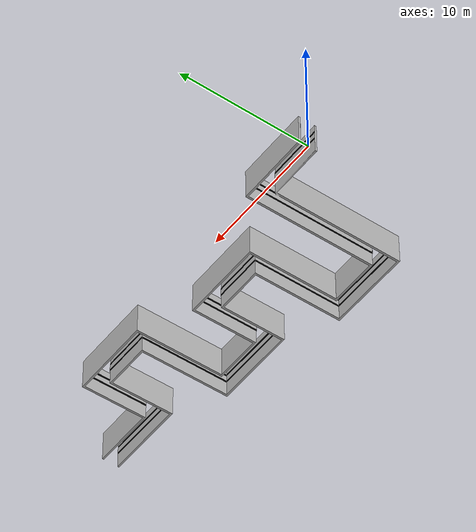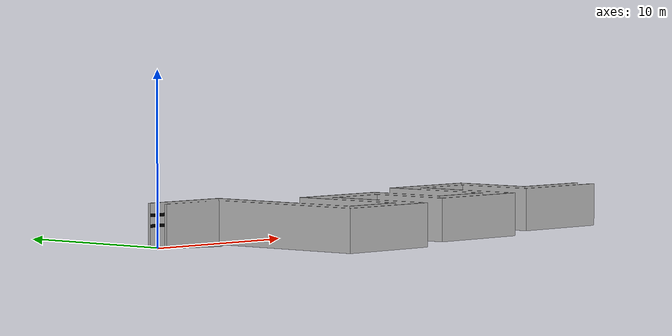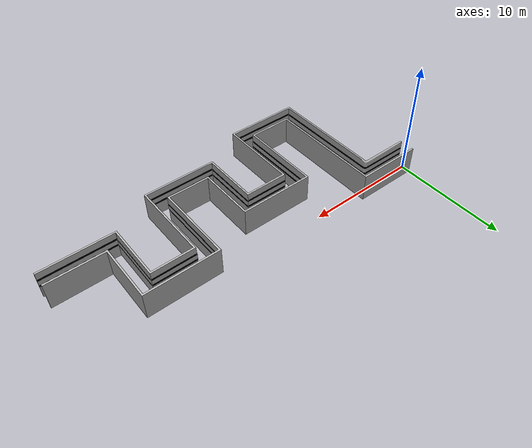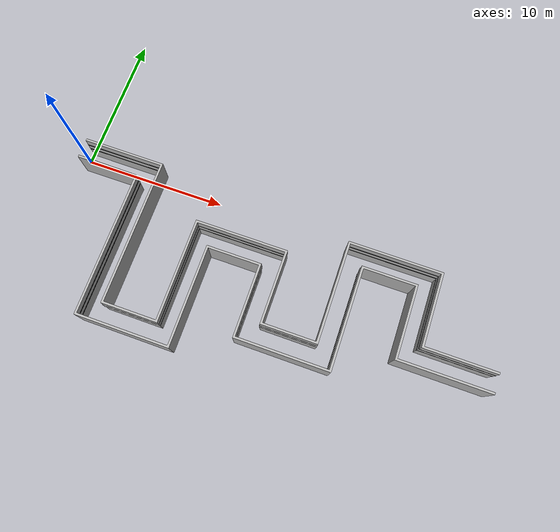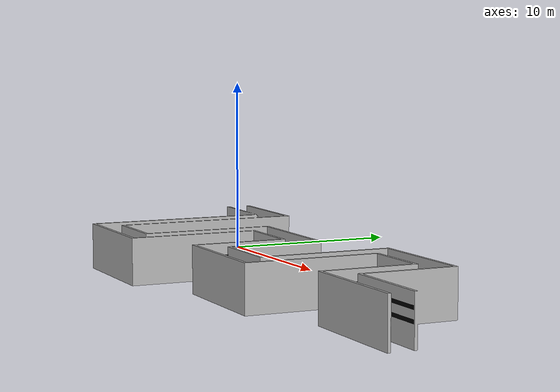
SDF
<?xml version="1.0" ?>
<sdf version='1.5'>
<model name='cwalls'>
<static>true</static>
<link name="link">
   <pose frame=''>0 0 0.01 0 0 0</pose>
   <collision name='corridor_ground_toppingC'>
    <geometry>
      <mesh>
        <scale>1.0 1.0 1.0</scale>
        <uri>model://cwalls/wall4.dae</uri>
      </mesh>
    </geometry>
  </collision>
  <visual name='corridor_ground_toppingV'>
    <cast_shadows>false</cast_shadows>
    <geometry>
      <mesh>
        <scale>1.0 1.0 1.0</scale>
        <uri>model://cwalls/wall4.dae</uri>
      </mesh>
    </geometry>
  </visual>
</link>
</model>
</sdf>
